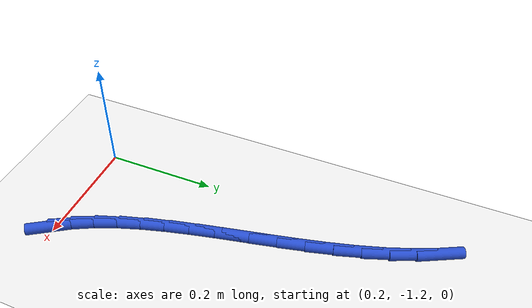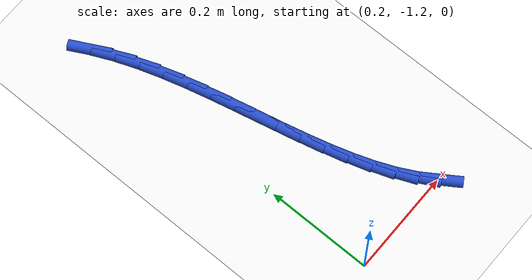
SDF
<sdf version="1.6">
 <world name="default">
  <model name="ground_plane">
   <static>1</static>
   <link name="link">
    <collision name="collision">
     <geometry><plane><normal>0 0 1</normal><size>100 100</size></plane></geometry>
     <surface><friction><ode><mu>100</mu><mu2>50</mu2></ode></friction></surface>
    </collision>
    <visual name="visual">
     <cast_shadows>0</cast_shadows>
     <geometry><plane><normal>0 0 1</normal><size>100 100</size></plane></geometry>
     <material>
      <script><uri>file://media/materials/scripts/gazebo.material</uri><name>Gazebo/WhiteGlow</name></script>
     </material>
    </visual>
   </link>
  </model>
  <model name="line">
   <link name="link_160">
    <pose>0.40032213835700914 -1.2040720273845105 0.01 0 1.57 -0.989801141122384</pose>
    <collision name="collision">
     <geometry><cylinder><radius>0.01</radius><length>0.08</length></cylinder></geometry>
    </collision>
    <visual name="visual">
     <material>
      <script><name>Gazebo/Blue</name><uri>file://media/materials/scripts/gazebo.material</uri></script>
     </material>
     <geometry><cylinder><radius>0.01</radius><length>0.08</length></cylinder></geometry>
    </visual>
   </link>
   <link name="link_161">
    <pose>0.379919325762816 -1.1729982089267703 0.01 0 1.57 -1.09128295447079</pose>
    <collision name="collision">
     <geometry><cylinder><radius>0.01</radius><length>0.08</length></cylinder></geometry>
    </collision>
    <visual name="visual">
     <material>
      <script><name>Gazebo/Blue</name><uri>file://media/materials/scripts/gazebo.material</uri></script>
     </material>
     <geometry><cylinder><radius>0.01</radius><length>0.08</length></cylinder></geometry>
    </visual>
   </link>
   <link name="link_162">
    <pose>0.3621191567308344 -1.1387666195717427 0.01 0 1.57 -1.172404603087407</pose>
    <collision name="collision">
     <geometry><cylinder><radius>0.01</radius><length>0.08</length></cylinder></geometry>
    </collision>
    <visual name="visual">
     <material>
      <script><name>Gazebo/Blue</name><uri>file://media/materials/scripts/gazebo.material</uri></script>
     </material>
     <geometry><cylinder><radius>0.01</radius><length>0.08</length></cylinder></geometry>
    </visual>
   </link>
   <link name="link_163">
    <pose>0.34654631082942955 -1.1017675879514135 0.01 0 1.57 -1.235497916294446</pose>
    <collision name="collision">
     <geometry><cylinder><radius>0.01</radius><length>0.08</length></cylinder></geometry>
    </collision>
    <visual name="visual">
     <material>
      <script><name>Gazebo/Blue</name><uri>file://media/materials/scripts/gazebo.material</uri></script>
     </material>
     <geometry><cylinder><radius>0.01</radius><length>0.08</length></cylinder></geometry>
    </visual>
   </link>
   <link name="link_164">
    <pose>0.332825467626967 -1.062391442697768 0.01 0 1.57 -1.2829969786683837</pose>
    <collision name="collision">
     <geometry><cylinder><radius>0.01</radius><length>0.08</length></cylinder></geometry>
    </collision>
    <visual name="visual">
     <material>
      <script><name>Gazebo/Blue</name><uri>file://media/materials/scripts/gazebo.material</uri></script>
     </material>
     <geometry><cylinder><radius>0.01</radius><length>0.08</length></cylinder></geometry>
    </visual>
   </link>
   <link name="link_165">
    <pose>0.32058130669181206 -1.0210285124427922 0.01 0 1.57 -1.3170092417455788</pose>
    <collision name="collision">
     <geometry><cylinder><radius>0.01</radius><length>0.08</length></cylinder></geometry>
    </collision>
    <visual name="visual">
     <material>
      <script><name>Gazebo/Blue</name><uri>file://media/materials/scripts/gazebo.material</uri></script>
     </material>
     <geometry><cylinder><radius>0.01</radius><length>0.08</length></cylinder></geometry>
    </visual>
   </link>
   <link name="link_166">
    <pose>0.3094385075923305 -0.9780691258184726 0.01 0 1.57 -1.3391721156329233</pose>
    <collision name="collision">
     <geometry><cylinder><radius>0.01</radius><length>0.08</length></cylinder></geometry>
    </collision>
    <visual name="visual">
     <material>
      <script><name>Gazebo/Blue</name><uri>file://media/materials/scripts/gazebo.material</uri></script>
     </material>
     <geometry><cylinder><radius>0.01</radius><length>0.08</length></cylinder></geometry>
    </visual>
   </link>
   <link name="link_167">
    <pose>0.2990217498968871 -0.9339036114567926 0.01 0 1.57 -1.3506408943842836</pose>
    <collision name="collision">
     <geometry><cylinder><radius>0.01</radius><length>0.08</length></cylinder></geometry>
    </collision>
    <visual name="visual">
     <material>
      <script><name>Gazebo/Blue</name><uri>file://media/materials/scripts/gazebo.material</uri></script>
     </material>
     <geometry><cylinder><radius>0.01</radius><length>0.08</length></cylinder></geometry>
    </visual>
   </link>
   <link name="link_168">
    <pose>0.2889557131738476 -0.8889222979897385 0.01 0 1.57 -1.3521223493291352</pose>
    <collision name="collision">
     <geometry><cylinder><radius>0.01</radius><length>0.08</length></cylinder></geometry>
    </collision>
    <visual name="visual">
     <material>
      <script><name>Gazebo/Blue</name><uri>file://media/materials/scripts/gazebo.material</uri></script>
     </material>
     <geometry><cylinder><radius>0.01</radius><length>0.08</length></cylinder></geometry>
    </visual>
   </link>
   <link name="link_169">
    <pose>0.2788650769915773 -0.8435155140492965 0.01 0 1.57 -1.3439147879279385</pose>
    <collision name="collision">
     <geometry><cylinder><radius>0.01</radius><length>0.08</length></cylinder></geometry>
    </collision>
    <visual name="visual">
     <material>
      <script><name>Gazebo/Blue</name><uri>file://media/materials/scripts/gazebo.material</uri></script>
     </material>
     <geometry><cylinder><radius>0.01</radius><length>0.08</length></cylinder></geometry>
    </visual>
   </link>
   <link name="link_170">
    <pose>0.2683745209184418 -0.7980735882674516 0.01 0 1.57 -1.325940585594215</pose>
    <collision name="collision">
     <geometry><cylinder><radius>0.01</radius><length>0.08</length></cylinder></geometry>
    </collision>
    <visual name="visual">
     <material>
      <script><name>Gazebo/Blue</name><uri>file://media/materials/scripts/gazebo.material</uri></script>
     </material>
     <geometry><cylinder><radius>0.01</radius><length>0.08</length></cylinder></geometry>
    </visual>
   </link>
   <link name="link_171">
    <pose>0.2571087245228063 -0.7529868492761898 0.01 0 1.57 -1.2977705892466502</pose>
    <collision name="collision">
     <geometry><cylinder><radius>0.01</radius><length>0.08</length></cylinder></geometry>
    </collision>
    <visual name="visual">
     <material>
      <script><name>Gazebo/Blue</name><uri>file://media/materials/scripts/gazebo.material</uri></script>
     </material>
     <geometry><cylinder><radius>0.01</radius><length>0.08</length></cylinder></geometry>
    </visual>
   </link>
   <link name="link_172">
    <pose>0.2446923673730367 -0.7086456257074973 0.01 0 1.57 -1.2586489885691772</pose>
    <collision name="collision">
     <geometry><cylinder><radius>0.01</radius><length>0.08</length></cylinder></geometry>
    </collision>
    <visual name="visual">
     <material>
      <script><name>Gazebo/Blue</name><uri>file://media/materials/scripts/gazebo.material</uri></script>
     </material>
     <geometry><cylinder><radius>0.01</radius><length>0.08</length></cylinder></geometry>
    </visual>
   </link>
   <link name="link_173">
    <pose>0.23075012903749761 -0.6654402461933575 0.01 0 1.57 -1.2075373380131382</pose>
    <collision name="collision">
     <geometry><cylinder><radius>0.01</radius><length>0.08</length></cylinder></geometry>
    </collision>
    <visual name="visual">
     <material>
      <script><name>Gazebo/Blue</name><uri>file://media/materials/scripts/gazebo.material</uri></script>
     </material>
     <geometry><cylinder><radius>0.01</radius><length>0.08</length></cylinder></geometry>
    </visual>
   </link>
   <link name="link_174">
    <pose>0.2149066890845549 -0.6237610393657576 0.01 0 1.57 -1.1453973209878785</pose>
    <collision name="collision">
     <geometry><cylinder><radius>0.01</radius><length>0.08</length></cylinder></geometry>
    </collision>
    <visual name="visual">
     <material>
      <script><name>Gazebo/Blue</name><uri>file://media/materials/scripts/gazebo.material</uri></script>
     </material>
     <geometry><cylinder><radius>0.01</radius><length>0.08</length></cylinder></geometry>
    </visual>
   </link>
   <link name="link_175">
    <pose>0.196864383763761 -0.5839381747060048 0.01 0 1.57 -1.0899471916437087</pose>
    <collision name="collision">
     <geometry><cylinder><radius>0.01</radius><length>0.08</length></cylinder></geometry>
    </collision>
    <visual name="visual">
     <material>
      <script><name>Gazebo/Blue</name><uri>file://media/materials/scripts/gazebo.material</uri></script>
     </material>
     <geometry><cylinder><radius>0.01</radius><length>0.08</length></cylinder></geometry>
    </visual>
   </link>
  </model>
 </world>
</sdf>
